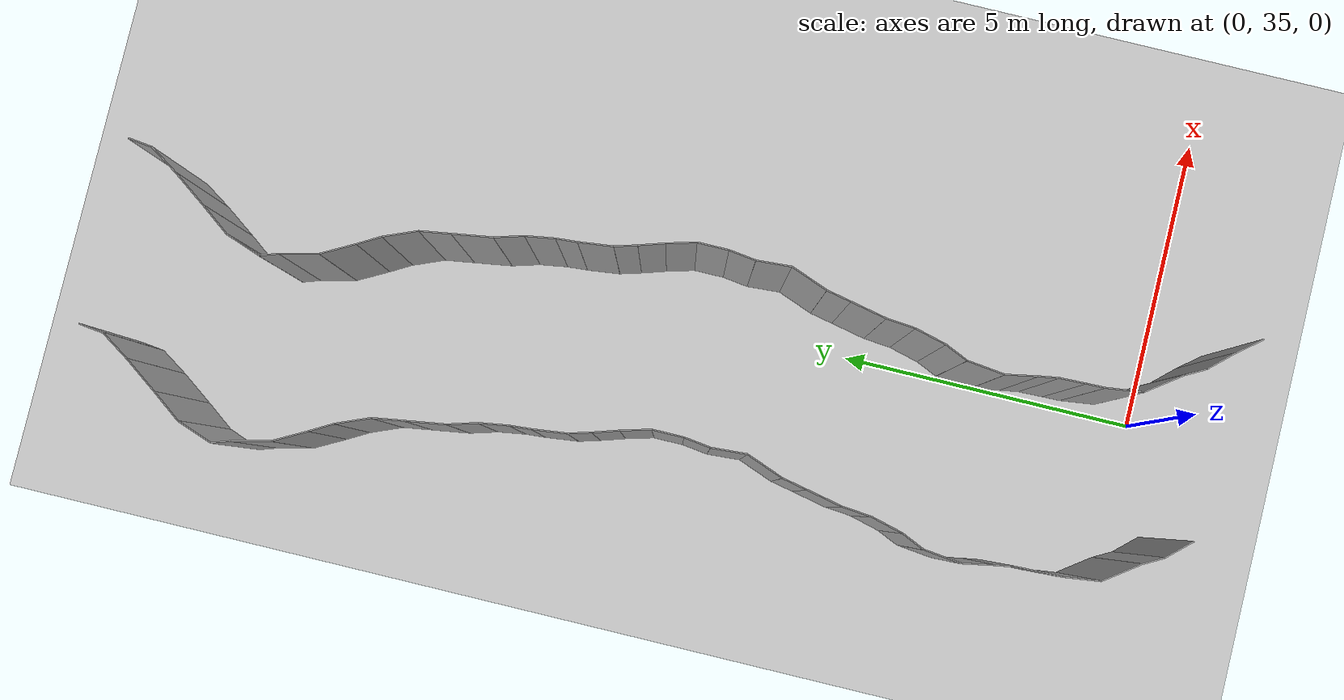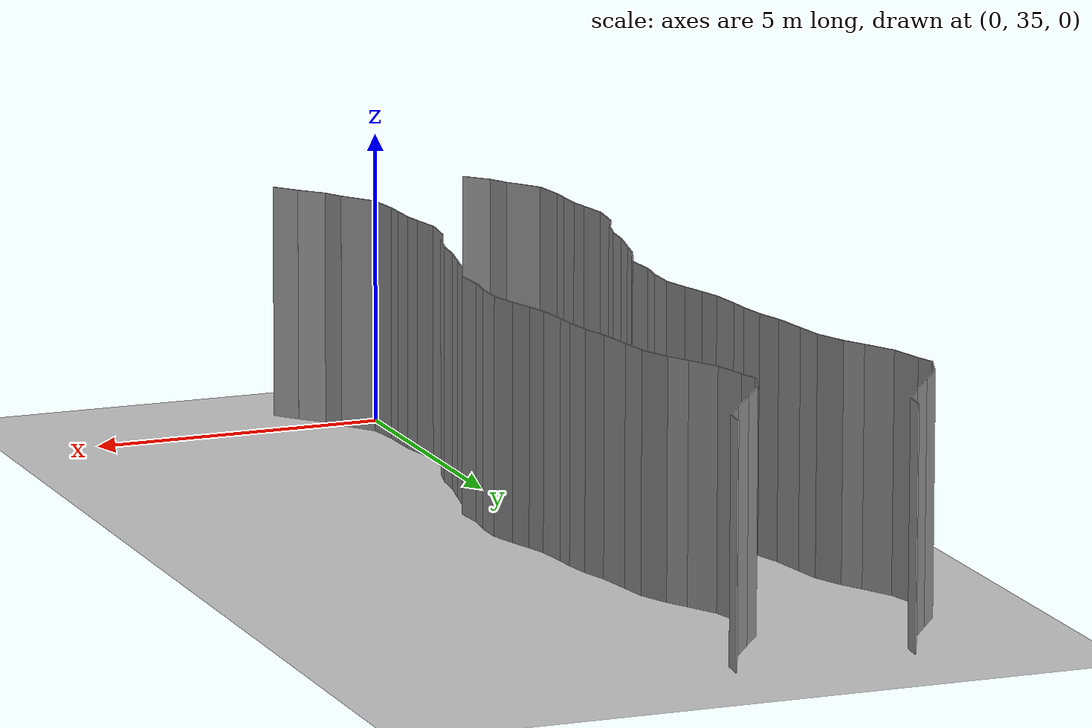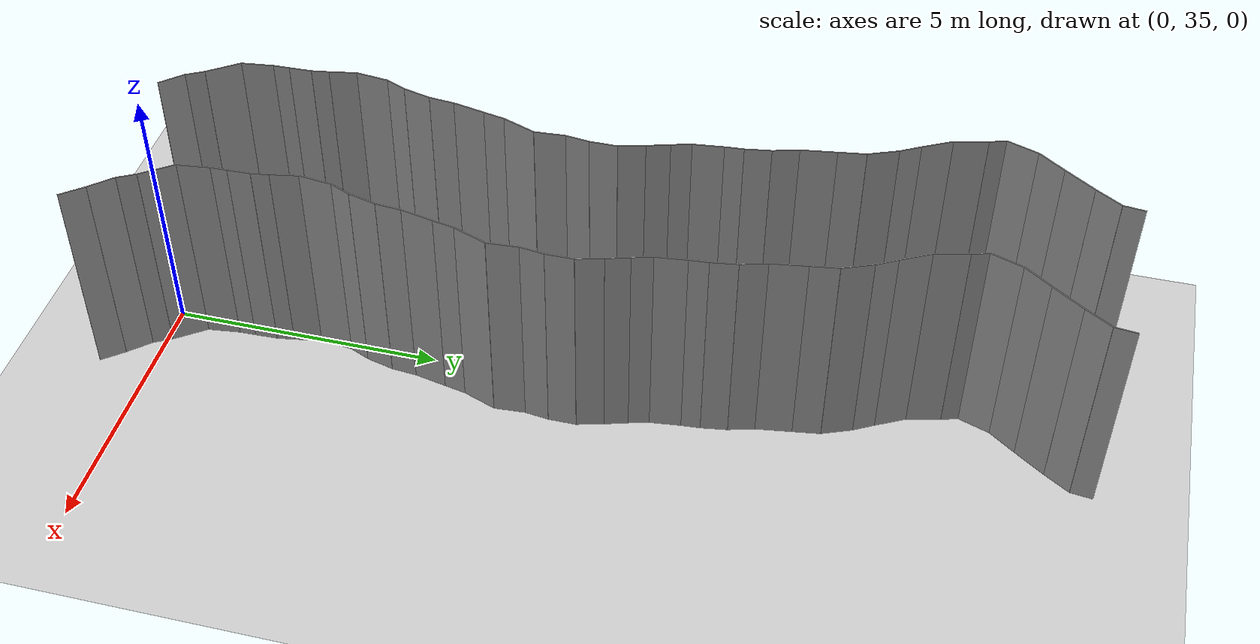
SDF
<sdf version="1.6">
 <world name="default">
  <model name="ground_plane">
   <static>1</static>
   <link name="link">
    <collision name="collision">
     <geometry><plane><normal>0 0 1</normal><size>200 200</size></plane></geometry>
     <surface><friction><ode><mu>100</mu><mu2>50</mu2></ode></friction></surface>
    </collision>
    <visual name="visual">
     <cast_shadows>0</cast_shadows>
     <geometry><plane><normal>0 0 1</normal><size>200 200</size></plane></geometry>
     <material>
      <script><uri>file://media/materials/scripts/gazebo.material</uri><name>Gazebo/Grey</name></script>
     </material>
    </visual>
   </link>
   <pose>0 100 0 0 -0 0</pose>
  </model>
  <model name="wall_149">
   <static>1</static>
   <pose>1.332459796747554 34.1894363242963 2 0 0 0.6821305578264967</pose>
   <link name="link">
    <collision name="collision"><geometry><box><size>0.02 0.492955525342 4</size></box></geometry></collision>
    <visual name="visual">
     <material>
      <script><name>Gazebo/Grey</name><uri>file://media/materials/scripts/gazebo.material</uri></script>
     </material>
     <geometry><box><size>0.02 0.492955525342 4</size></box></geometry>
    </visual>
   </link>
  </model>
  <model name="wall_150">
   <static>1</static>
   <pose>-1.9984593966821205 34.57117535627085 2 0 0 0.7447378373779694</pose>
   <link name="link">
    <collision name="collision"><geometry><box><size>0.02 0.517949649333 4</size></box></geometry></collision>
    <visual name="visual">
     <material>
      <script><name>Gazebo/Grey</name><uri>file://media/materials/scripts/gazebo.material</uri></script>
     </material>
     <geometry><box><size>0.02 0.517949649333 4</size></box></geometry>
    </visual>
   </link>
  </model>
  <model name="wall_151">
   <static>1</static>
   <pose>1.0015406033178795 34.57117535627085 2 0 0 0.7447378373779694</pose>
   <link name="link">
    <collision name="collision"><geometry><box><size>0.02 0.517949649333 4</size></box></geometry></collision>
    <visual name="visual">
     <material>
      <script><name>Gazebo/Grey</name><uri>file://media/materials/scripts/gazebo.material</uri></script>
     </material>
     <geometry><box><size>0.02 0.517949649333 4</size></box></geometry>
    </visual>
   </link>
  </model>
  <model name="wall_152">
   <static>1</static>
   <pose>-2.2610036979116828 34.92080439907163 2 0 0 0.5001823997998763</pose>
   <link name="link">
    <collision name="collision"><geometry><box><size>0.02 0.362882388259 4</size></box></geometry></collision>
    <visual name="visual">
     <material>
      <script><name>Gazebo/Grey</name><uri>file://media/materials/scripts/gazebo.material</uri></script>
     </material>
     <geometry><box><size>0.02 0.362882388259 4</size></box></geometry>
    </visual>
   </link>
  </model>
  <model name="wall_153">
   <static>1</static>
   <pose>0.7389963020883172 34.92080439907163 2 0 0 0.5001823997998763</pose>
   <link name="link">
    <collision name="collision"><geometry><box><size>0.02 0.362882388259 4</size></box></geometry></collision>
    <visual name="visual">
     <material>
      <script><name>Gazebo/Grey</name><uri>file://media/materials/scripts/gazebo.material</uri></script>
     </material>
     <geometry><box><size>0.02 0.362882388259 4</size></box></geometry>
    </visual>
   </link>
  </model>
  <model name="wall_154">
   <static>1</static>
   <pose>-2.5492954238315155 35.35647186929814 2 0 0 0.6293116096216603</pose>
   <link name="link">
    <collision name="collision"><geometry><box><size>0.02 0.683924958503 4</size></box></geometry></collision>
    <visual name="visual">
     <material>
      <script><name>Gazebo/Grey</name><uri>file://media/materials/scripts/gazebo.material</uri></script>
     </material>
     <geometry><box><size>0.02 0.683924958503 4</size></box></geometry>
    </visual>
   </link>
  </model>
  <model name="wall_155">
   <static>1</static>
   <pose>0.45070457616848447 35.35647186929814 2 0 0 0.6293116096216603</pose>
   <link name="link">
    <collision name="collision"><geometry><box><size>0.02 0.683924958503 4</size></box></geometry></collision>
    <visual name="visual">
     <material>
      <script><name>Gazebo/Grey</name><uri>file://media/materials/scripts/gazebo.material</uri></script>
     </material>
     <geometry><box><size>0.02 0.683924958503 4</size></box></geometry>
    </visual>
   </link>
  </model>
  <model name="wall_156">
   <static>1</static>
   <pose>-2.7881665402278624 35.93277398334961 2 0 0 0.12473235510812558</pose>
   <link name="link">
    <collision name="collision"><geometry><box><size>0.02 0.604392329141 4</size></box></geometry></collision>
    <visual name="visual">
     <material>
      <script><name>Gazebo/Grey</name><uri>file://media/materials/scripts/gazebo.material</uri></script>
     </material>
     <geometry><box><size>0.02 0.604392329141 4</size></box></geometry>
    </visual>
   </link>
  </model>
  <model name="wall_157">
   <static>1</static>
   <pose>0.21183345977213763 35.93277398334961 2 0 0 0.12473235510812558</pose>
   <link name="link">
    <collision name="collision"><geometry><box><size>0.02 0.604392329141 4</size></box></geometry></collision>
    <visual name="visual">
     <material>
      <script><name>Gazebo/Grey</name><uri>file://media/materials/scripts/gazebo.material</uri></script>
     </material>
     <geometry><box><size>0.02 0.604392329141 4</size></box></geometry>
    </visual>
   </link>
  </model>
  <model name="wall_158">
   <static>1</static>
   <pose>-2.8289263757045955 36.38547688207906 2 0 0 0.020695557817631428</pose>
   <link name="link">
    <collision name="collision"><geometry><box><size>0.02 0.305774472375 4</size></box></geometry></collision>
    <visual name="visual">
     <material>
      <script><name>Gazebo/Grey</name><uri>file://media/materials/scripts/gazebo.material</uri></script>
     </material>
     <geometry><box><size>0.02 0.305774472375 4</size></box></geometry>
    </visual>
   </link>
  </model>
  <model name="wall_159">
   <static>1</static>
   <pose>0.1710736242954045 36.38547688207906 2 0 0 0.020695557817631428</pose>
   <link name="link">
    <collision name="collision"><geometry><box><size>0.02 0.305774472375 4</size></box></geometry></collision>
    <visual name="visual">
     <material>
      <script><name>Gazebo/Grey</name><uri>file://media/materials/scripts/gazebo.material</uri></script>
     </material>
     <geometry><box><size>0.02 0.305774472375 4</size></box></geometry>
    </visual>
   </link>
  </model>
  <model name="wall_160">
   <static>1</static>
   <pose>-2.83850444413655 36.75089710789396 2 0 0 0.030166019370018365</pose>
   <link name="link">
    <collision name="collision"><geometry><box><size>0.02 0.425324965243 4</size></box></geometry></collision>
    <visual name="visual">
     <material>
      <script><name>Gazebo/Grey</name><uri>file://media/materials/scripts/gazebo.material</uri></script>
     </material>
     <geometry><box><size>0.02 0.425324965243 4</size></box></geometry>
    </visual>
   </link>
  </model>
  <model name="wall_161">
   <static>1</static>
   <pose>0.16149555586344988 36.75089710789396 2 0 0 0.030166019370018365</pose>
   <link name="link">
    <collision name="collision"><geometry><box><size>0.02 0.425324965243 4</size></box></geometry></collision>
    <visual name="visual">
     <material>
      <script><name>Gazebo/Grey</name><uri>file://media/materials/scripts/gazebo.material</uri></script>
     </material>
     <geometry><box><size>0.02 0.425324965243 4</size></box></geometry>
    </visual>
   </link>
  </model>
  <model name="wall_162">
   <static>1</static>
   <pose>-2.870725222512821 37.12368220014198 2 0 0 0.15969861057985157</pose>
   <link name="link">
    <collision name="collision"><geometry><box><size>0.02 0.324568779883 4</size></box></geometry></collision>
    <visual name="visual">
     <material>
      <script><name>Gazebo/Grey</name><uri>file://media/materials/scripts/gazebo.material</uri></script>
     </material>
     <geometry><box><size>0.02 0.324568779883 4</size></box></geometry>
    </visual>
   </link>
  </model>
  <model name="wall_163">
   <static>1</static>
   <pose>0.1292747774871792 37.12368220014198 2 0 0 0.15969861057985157</pose>
   <link name="link">
    <collision name="collision"><geometry><box><size>0.02 0.324568779883 4</size></box></geometry></collision>
    <visual name="visual">
     <material>
      <script><name>Gazebo/Grey</name><uri>file://media/materials/scripts/gazebo.material</uri></script>
     </material>
     <geometry><box><size>0.02 0.324568779883 4</size></box></geometry>
    </visual>
   </link>
  </model>
  <model name="wall_164">
   <static>1</static>
   <pose>-2.9441962992742643 37.53825327620614 2 0 0 0.18524752701487604</pose>
   <link name="link">
    <collision name="collision"><geometry><box><size>0.02 0.517558496478 4</size></box></geometry></collision>
    <visual name="visual">
     <material>
      <script><name>Gazebo/Grey</name><uri>file://media/materials/scripts/gazebo.material</uri></script>
     </material>
     <geometry><box><size>0.02 0.517558496478 4</size></box></geometry>
    </visual>
   </link>
  </model>
  <model name="wall_165">
   <static>1</static>
   <pose>0.055803700725735705 37.53825327620614 2 0 0 0.18524752701487604</pose>
   <link name="link">
    <collision name="collision"><geometry><box><size>0.02 0.517558496478 4</size></box></geometry></collision>
    <visual name="visual">
     <material>
      <script><name>Gazebo/Grey</name><uri>file://media/materials/scripts/gazebo.material</uri></script>
     </material>
     <geometry><box><size>0.02 0.517558496478 4</size></box></geometry>
    </visual>
   </link>
  </model>
  <model name="wall_166">
   <static>1</static>
   <pose>-2.9558007237277195 38.099800358733496 2 0 0 -0.116850105211004</pose>
   <link name="link">
    <collision name="collision"><geometry><box><size>0.02 0.618609163233 4</size></box></geometry></collision>
    <visual name="visual">
     <material>
      <script><name>Gazebo/Grey</name><uri>file://media/materials/scripts/gazebo.material</uri></script>
     </material>
     <geometry><box><size>0.02 0.618609163233 4</size></box></geometry>
    </visual>
   </link>
  </model>
  <model name="wall_167">
   <static>1</static>
   <pose>0.044199276272280486 38.099800358733496 2 0 0 -0.116850105211004</pose>
   <link name="link">
    <collision name="collision"><geometry><box><size>0.02 0.618609163233 4</size></box></geometry></collision>
    <visual name="visual">
     <material>
      <script><name>Gazebo/Grey</name><uri>file://media/materials/scripts/gazebo.material</uri></script>
     </material>
     <geometry><box><size>0.02 0.618609163233 4</size></box></geometry>
    </visual>
   </link>
  </model>
  <model name="wall_168">
   <static>1</static>
   <pose>-2.8356437064748956 38.595325631354335 2 0 0 -0.4199733097039296</pose>
   <link name="link">
    <collision name="collision"><geometry><box><size>0.02 0.412506713604 4</size></box></geometry></collision>
    <visual name="visual">
     <material>
      <script><name>Gazebo/Grey</name><uri>file://media/materials/scripts/gazebo.material</uri></script>
     </material>
     <geometry><box><size>0.02 0.412506713604 4</size></box></geometry>
    </visual>
   </link>
  </model>
  <model name="wall_169">
   <static>1</static>
   <pose>0.1643562935251044 38.595325631354335 2 0 0 -0.4199733097039296</pose>
   <link name="link">
    <collision name="collision"><geometry><box><size>0.02 0.412506713604 4</size></box></geometry></collision>
    <visual name="visual">
     <material>
      <script><name>Gazebo/Grey</name><uri>file://media/materials/scripts/gazebo.material</uri></script>
     </material>
     <geometry><box><size>0.02 0.412506713604 4</size></box></geometry>
    </visual>
   </link>
  </model>
  <model name="wall_170">
   <static>1</static>
   <pose>-2.6848852523071263 39.04228632926861 2 0 0 -0.2522573133152819</pose>
   <link name="link">
    <collision name="collision"><geometry><box><size>0.02 0.534167186553 4</size></box></geometry></collision>
    <visual name="visual">
     <material>
      <script><name>Gazebo/Grey</name><uri>file://media/materials/scripts/gazebo.material</uri></script>
     </material>
     <geometry><box><size>0.02 0.534167186553 4</size></box></geometry>
    </visual>
   </link>
  </model>
  <model name="wall_171">
   <static>1</static>
   <pose>0.31511474769287373 39.04228632926861 2 0 0 -0.2522573133152819</pose>
   <link name="link">
    <collision name="collision"><geometry><box><size>0.02 0.534167186553 4</size></box></geometry></collision>
    <visual name="visual">
     <material>
      <script><name>Gazebo/Grey</name><uri>file://media/materials/scripts/gazebo.material</uri></script>
     </material>
     <geometry><box><size>0.02 0.534167186553 4</size></box></geometry>
    </visual>
   </link>
  </model>
  <model name="wall_172">
   <static>1</static>
   <pose>-2.595888286052671 39.538241322947485 2 0 0 -0.09383725530664613</pose>
   <link name="link">
    <collision name="collision"><geometry><box><size>0.02 0.476745835212 4</size></box></geometry></collision>
    <visual name="visual">
     <material>
      <script><name>Gazebo/Grey</name><uri>file://media/materials/scripts/gazebo.material</uri></script>
     </material>
     <geometry><box><size>0.02 0.476745835212 4</size></box></geometry>
    </visual>
   </link>
  </model>
  <model name="wall_173">
   <static>1</static>
   <pose>0.40411171394732914 39.538241322947485 2 0 0 -0.09383725530664613</pose>
   <link name="link">
    <collision name="collision"><geometry><box><size>0.02 0.476745835212 4</size></box></geometry></collision>
    <visual name="visual">
     <material>
      <script><name>Gazebo/Grey</name><uri>file://media/materials/scripts/gazebo.material</uri></script>
     </material>
     <geometry><box><size>0.02 0.476745835212 4</size></box></geometry>
    </visual>
   </link>
  </model>
  <model name="wall_174">
   <static>1</static>
   <pose>-2.510156355215585 40.07430881919638 2 0 0 -0.2091084444487573</pose>
   <link name="link">
    <collision name="collision"><geometry><box><size>0.02 0.610791851545 4</size></box></geometry></collision>
    <visual name="visual">
     <material>
      <script><name>Gazebo/Grey</name><uri>file://media/materials/scripts/gazebo.material</uri></script>
     </material>
     <geometry><box><size>0.02 0.610791851545 4</size></box></geometry>
    </visual>
   </link>
  </model>
  <model name="wall_175">
   <static>1</static>
   <pose>0.4898436447844152 40.07430881919638 2 0 0 -0.2091084444487573</pose>
   <link name="link">
    <collision name="collision"><geometry><box><size>0.02 0.610791851545 4</size></box></geometry></collision>
    <visual name="visual">
     <material>
      <script><name>Gazebo/Grey</name><uri>file://media/materials/scripts/gazebo.material</uri></script>
     </material>
     <geometry><box><size>0.02 0.610791851545 4</size></box></geometry>
    </visual>
   </link>
  </model>
  <model name="wall_176">
   <static>1</static>
   <pose>-2.405273103232558 40.57323324489003 2 0 0 -0.20435320700039863</pose>
   <link name="link">
    <collision name="collision"><geometry><box><size>0.02 0.408869839142 4</size></box></geometry></collision>
    <visual name="visual">
     <material>
      <script><name>Gazebo/Grey</name><uri>file://media/materials/scripts/gazebo.material</uri></script>
     </material>
     <geometry><box><size>0.02 0.408869839142 4</size></box></geometry>
    </visual>
   </link>
  </model>
  <model name="wall_177">
   <static>1</static>
   <pose>0.5947268967674422 40.57323324489003 2 0 0 -0.20435320700039863</pose>
   <link name="link">
    <collision name="collision"><geometry><box><size>0.02 0.408869839142 4</size></box></geometry></collision>
    <visual name="visual">
     <material>
      <script><name>Gazebo/Grey</name><uri>file://media/materials/scripts/gazebo.material</uri></script>
     </material>
     <geometry><box><size>0.02 0.408869839142 4</size></box></geometry>
    </visual>
   </link>
  </model>
  <model name="wall_178">
   <static>1</static>
   <pose>-2.2472295315914663 41.07958861056498 2 0 0 -0.3637479037039396</pose>
   <link name="link">
    <collision name="collision"><geometry><box><size>0.02 0.655219509976 4</size></box></geometry></collision>
    <visual name="visual">
     <material>
      <script><name>Gazebo/Grey</name><uri>file://media/materials/scripts/gazebo.material</uri></script>
     </material>
     <geometry><box><size>0.02 0.655219509976 4</size></box></geometry>
    </visual>
   </link>
  </model>
  <model name="wall_179">
   <static>1</static>
   <pose>0.7527704684085337 41.07958861056498 2 0 0 -0.3637479037039396</pose>
   <link name="link">
    <collision name="collision"><geometry><box><size>0.02 0.655219509976 4</size></box></geometry></collision>
    <visual name="visual">
     <material>
      <script><name>Gazebo/Grey</name><uri>file://media/materials/scripts/gazebo.material</uri></script>
     </material>
     <geometry><box><size>0.02 0.655219509976 4</size></box></geometry>
    </visual>
   </link>
  </model>
  <model name="wall_180">
   <static>1</static>
   <pose>-2.149109166332246 41.672337617994394 2 0 0 0.06424524147767186</pose>
   <link name="link">
    <collision name="collision"><geometry><box><size>0.02 0.574334402147 4</size></box></geometry></collision>
    <visual name="visual">
     <material>
      <script><name>Gazebo/Grey</name><uri>file://media/materials/scripts/gazebo.material</uri></script>
     </material>
     <geometry><box><size>0.02 0.574334402147 4</size></box></geometry>
    </visual>
   </link>
  </model>
  <model name="wall_181">
   <static>1</static>
   <pose>0.8508908336677541 41.672337617994394 2 0 0 0.06424524147767186</pose>
   <link name="link">
    <collision name="collision"><geometry><box><size>0.02 0.574334402147 4</size></box></geometry></collision>
    <visual name="visual">
     <material>
      <script><name>Gazebo/Grey</name><uri>file://media/materials/scripts/gazebo.material</uri></script>
     </material>
     <geometry><box><size>0.02 0.574334402147 4</size></box></geometry>
    </visual>
   </link>
  </model>
  <model name="wall_182">
   <static>1</static>
   <pose>-2.1381304943262562 42.18029528802715 2 0 0 -0.13209610314592699</pose>
   <link name="link">
    <collision name="collision"><geometry><box><size>0.02 0.446657080217 4</size></box></geometry></collision>
    <visual name="visual">
     <material>
      <script><name>Gazebo/Grey</name><uri>file://media/materials/scripts/gazebo.material</uri></script>
     </material>
     <geometry><box><size>0.02 0.446657080217 4</size></box></geometry>
    </visual>
   </link>
  </model>
  <model name="wall_183">
   <static>1</static>
   <pose>0.8618695056737438 42.18029528802715 2 0 0 -0.13209610314592699</pose>
   <link name="link">
    <collision name="collision"><geometry><box><size>0.02 0.446657080217 4</size></box></geometry></collision>
    <visual name="visual">
     <material>
      <script><name>Gazebo/Grey</name><uri>file://media/materials/scripts/gazebo.material</uri></script>
     </material>
     <geometry><box><size>0.02 0.446657080217 4</size></box></geometry>
    </visual>
   </link>
  </model>
  <model name="wall_184">
   <static>1</static>
   <pose>-2.108733756666895 42.65779423647947 2 0 0 7.173245139002038e-05</pose>
   <link name="link">
    <collision name="collision"><geometry><box><size>0.02 0.51223209936 4</size></box></geometry></collision>
    <visual name="visual">
     <material>
      <script><name>Gazebo/Grey</name><uri>file://media/materials/scripts/gazebo.material</uri></script>
     </material>
     <geometry><box><size>0.02 0.51223209936 4</size></box></geometry>
    </visual>
   </link>
  </model>
  <model name="wall_185">
   <static>1</static>
   <pose>0.8912662433331051 42.65779423647947 2 0 0 7.173245139002038e-05</pose>
   <link name="link">
    <collision name="collision"><geometry><box><size>0.02 0.51223209936 4</size></box></geometry></collision>
    <visual name="visual">
     <material>
      <script><name>Gazebo/Grey</name><uri>file://media/materials/scripts/gazebo.material</uri></script>
     </material>
     <geometry><box><size>0.02 0.51223209936 4</size></box></geometry>
    </visual>
   </link>
  </model>
  <model name="wall_186">
   <static>1</static>
   <pose>-2.17444894225317 43.15154704091183 2 0 0 0.26972210148779796</pose>
   <link name="link">
    <collision name="collision"><geometry><box><size>0.02 0.493101607622 4</size></box></geometry></collision>
    <visual name="visual">
     <material>
      <script><name>Gazebo/Grey</name><uri>file://media/materials/scripts/gazebo.material</uri></script>
     </material>
     <geometry><box><size>0.02 0.493101607622 4</size></box></geometry>
    </visual>
   </link>
  </model>
  <model name="wall_187">
   <static>1</static>
   <pose>0.8255510577468299 43.15154704091183 2 0 0 0.26972210148779796</pose>
   <link name="link">
    <collision name="collision"><geometry><box><size>0.02 0.493101607622 4</size></box></geometry></collision>
    <visual name="visual">
     <material>
      <script><name>Gazebo/Grey</name><uri>file://media/materials/scripts/gazebo.material</uri></script>
     </material>
     <geometry><box><size>0.02 0.493101607622 4</size></box></geometry>
    </visual>
   </link>
  </model>
  <model name="wall_188">
   <static>1</static>
   <pose>-2.305650753116275 43.596332236801864 2 0 0 0.3062725791957608</pose>
   <link name="link">
    <collision name="collision"><geometry><box><size>0.02 0.434517576349 4</size></box></geometry></collision>
    <visual name="visual">
     <material>
      <script><name>Gazebo/Grey</name><uri>file://media/materials/scripts/gazebo.material</uri></script>
     </material>
     <geometry><box><size>0.02 0.434517576349 4</size></box></geometry>
    </visual>
   </link>
  </model>
  <model name="wall_189">
   <static>1</static>
   <pose>0.6943492468837249 43.596332236801864 2 0 0 0.3062725791957608</pose>
   <link name="link">
    <collision name="collision"><geometry><box><size>0.02 0.434517576349 4</size></box></geometry></collision>
    <visual name="visual">
     <material>
      <script><name>Gazebo/Grey</name><uri>file://media/materials/scripts/gazebo.material</uri></script>
     </material>
     <geometry><box><size>0.02 0.434517576349 4</size></box></geometry>
    </visual>
   </link>
  </model>
  <model name="wall_190">
   <static>1</static>
   <pose>-2.423134288945694 43.98460219109296 2 0 0 0.27947091844205196</pose>
   <link name="link">
    <collision name="collision"><geometry><box><size>0.02 0.376864809996 4</size></box></geometry></collision>
    <visual name="visual">
     <material>
      <script><name>Gazebo/Grey</name><uri>file://media/materials/scripts/gazebo.material</uri></script>
     </material>
     <geometry><box><size>0.02 0.376864809996 4</size></box></geometry>
    </visual>
   </link>
  </model>
  <model name="wall_191">
   <static>1</static>
   <pose>0.5768657110543058 43.98460219109296 2 0 0 0.27947091844205196</pose>
   <link name="link">
    <collision name="collision"><geometry><box><size>0.02 0.376864809996 4</size></box></geometry></collision>
    <visual name="visual">
     <material>
      <script><name>Gazebo/Grey</name><uri>file://media/materials/scripts/gazebo.material</uri></script>
     </material>
     <geometry><box><size>0.02 0.376864809996 4</size></box></geometry>
    </visual>
   </link>
  </model>
  <model name="wall_192">
   <static>1</static>
   <pose>-2.508654123100942 44.44723579082739 2 0 0 0.11858786239266941</pose>
   <link name="link">
    <collision name="collision"><geometry><box><size>0.02 0.567006430368 4</size></box></geometry></collision>
    <visual name="visual">
     <material>
      <script><name>Gazebo/Grey</name><uri>file://media/materials/scripts/gazebo.material</uri></script>
     </material>
     <geometry><box><size>0.02 0.567006430368 4</size></box></geometry>
    </visual>
   </link>
  </model>
  <model name="wall_193">
   <static>1</static>
   <pose>0.4913458768990582 44.44723579082739 2 0 0 0.11858786239266941</pose>
   <link name="link">
    <collision name="collision"><geometry><box><size>0.02 0.567006430368 4</size></box></geometry></collision>
    <visual name="visual">
     <material>
      <script><name>Gazebo/Grey</name><uri>file://media/materials/scripts/gazebo.material</uri></script>
     </material>
     <geometry><box><size>0.02 0.567006430368 4</size></box></geometry>
    </visual>
   </link>
  </model>
  <model name="wall_194">
   <static>1</static>
   <pose>-2.555210262536265 44.90154110968918 2 0 0 0.07517838219015192</pose>
   <link name="link">
    <collision name="collision"><geometry><box><size>0.02 0.346565361882 4</size></box></geometry></collision>
    <visual name="visual">
     <material>
      <script><name>Gazebo/Grey</name><uri>file://media/materials/scripts/gazebo.material</uri></script>
     </material>
     <geometry><box><size>0.02 0.346565361882 4</size></box></geometry>
    </visual>
   </link>
  </model>
  <model name="wall_195">
   <static>1</static>
   <pose>0.44478973746373507 44.90154110968918 2 0 0 0.07517838219015192</pose>
   <link name="link">
    <collision name="collision"><geometry><box><size>0.02 0.346565361882 4</size></box></geometry></collision>
    <visual name="visual">
     <material>
      <script><name>Gazebo/Grey</name><uri>file://media/materials/scripts/gazebo.material</uri></script>
     </material>
     <geometry><box><size>0.02 0.346565361882 4</size></box></geometry>
    </visual>
   </link>
  </model>
  <model name="wall_196">
   <static>1</static>
   <pose>-2.6057657131513072 45.31365373466591 2 0 0 0.15559609149288803</pose>
   <link name="link">
    <collision name="collision"><geometry><box><size>0.02 0.48449176897 4</size></box></geometry></collision>
    <visual name="visual">
     <material>
      <script><name>Gazebo/Grey</name><uri>file://media/materials/scripts/gazebo.material</uri></script>
     </material>
     <geometry><box><size>0.02 0.48449176897 4</size></box></geometry>
    </visual>
   </link>
  </model>
  <model name="wall_197">
   <static>1</static>
   <pose>0.39423428684869277 45.31365373466591 2 0 0 0.15559609149288803</pose>
   <link name="link">
    <collision name="collision"><geometry><box><size>0.02 0.48449176897 4</size></box></geometry></collision>
    <visual name="visual">
     <material>
      <script><name>Gazebo/Grey</name><uri>file://media/materials/scripts/gazebo.material</uri></script>
     </material>
     <geometry><box><size>0.02 0.48449176897 4</size></box></geometry>
    </visual>
   </link>
  </model>
  <model name="wall_198">
   <static>1</static>
   <pose>-2.711461391723145 45.78676211950064 2 0 0 0.28366250280304534</pose>
   <link name="link">
    <collision name="collision"><geometry><box><size>0.02 0.487041710686 4</size></box></geometry></collision>
    <visual name="visual">
     <material>
      <script><name>Gazebo/Grey</name><uri>file://media/materials/scripts/gazebo.material</uri></script>
     </material>
     <geometry><box><size>0.02 0.487041710686 4</size></box></geometry>
    </visual>
   </link>
  </model>
  <model name="wall_199">
   <static>1</static>
   <pose>0.28853860827685507 45.78676211950064 2 0 0 0.28366250280304534</pose>
   <link name="link">
    <collision name="collision"><geometry><box><size>0.02 0.487041710686 4</size></box></geometry></collision>
    <visual name="visual">
     <material>
      <script><name>Gazebo/Grey</name><uri>file://media/materials/scripts/gazebo.material</uri></script>
     </material>
     <geometry><box><size>0.02 0.487041710686 4</size></box></geometry>
    </visual>
   </link>
  </model>
  <model name="wall_200">
   <static>1</static>
   <pose>-2.8292866152469642 46.345938127345406 2 0 0 0.15148009230059922</pose>
   <link name="link">
    <collision name="collision"><geometry><box><size>0.02 0.658312489682 4</size></box></geometry></collision>
    <visual name="visual">
     <material>
      <script><name>Gazebo/Grey</name><uri>file://media/materials/scripts/gazebo.material</uri></script>
     </material>
     <geometry><box><size>0.02 0.658312489682 4</size></box></geometry>
    </visual>
   </link>
  </model>
  <model name="wall_201">
   <static>1</static>
   <pose>0.17071338475303577 46.345938127345406 2 0 0 0.15148009230059922</pose>
   <link name="link">
    <collision name="collision"><geometry><box><size>0.02 0.658312489682 4</size></box></geometry></collision>
    <visual name="visual">
     <material>
      <script><name>Gazebo/Grey</name><uri>file://media/materials/scripts/gazebo.material</uri></script>
     </material>
     <geometry><box><size>0.02 0.658312489682 4</size></box></geometry>
    </visual>
   </link>
  </model>
  <model name="wall_202">
   <static>1</static>
   <pose>-2.917293665318186 46.92277763703161 2 0 0 0.15129669653113778</pose>
   <link name="link">
    <collision name="collision"><geometry><box><size>0.02 0.508716325066 4</size></box></geometry></collision>
    <visual name="visual">
     <material>
      <script><name>Gazebo/Grey</name><uri>file://media/materials/scripts/gazebo.material</uri></script>
     </material>
     <geometry><box><size>0.02 0.508716325066 4</size></box></geometry>
    </visual>
   </link>
  </model>
  <model name="wall_203">
   <static>1</static>
   <pose>0.08270633468181421 46.92277763703161 2 0 0 0.15129669653113778</pose>
   <link name="link">
    <collision name="collision"><geometry><box><size>0.02 0.508716325066 4</size></box></geometry></collision>
    <visual name="visual">
     <material>
      <script><name>Gazebo/Grey</name><uri>file://media/materials/scripts/gazebo.material</uri></script>
     </material>
     <geometry><box><size>0.02 0.508716325066 4</size></box></geometry>
    </visual>
   </link>
  </model>
  <model name="wall_204">
   <static>1</static>
   <pose>-3.0664072098422133 47.44159949265228 2 0 0 0.3927904787354125</pose>
   <link name="link">
    <collision name="collision"><geometry><box><size>0.02 0.578818937129 4</size></box></geometry></collision>
    <visual name="visual">
     <material>
      <script><name>Gazebo/Grey</name><uri>file://media/materials/scripts/gazebo.material</uri></script>
     </material>
     <geometry><box><size>0.02 0.578818937129 4</size></box></geometry>
    </visual>
   </link>
  </model>
  <model name="wall_205">
   <static>1</static>
   <pose>-0.06640720984221327 47.44159949265228 2 0 0 0.3927904787354125</pose>
   <link name="link">
    <collision name="collision"><geometry><box><size>0.02 0.578818937129 4</size></box></geometry></collision>
    <visual name="visual">
     <material>
      <script><name>Gazebo/Grey</name><uri>file://media/materials/scripts/gazebo.material</uri></script>
     </material>
     <geometry><box><size>0.02 0.578818937129 4</size></box></geometry>
    </visual>
   </link>
  </model>
  <model name="wall_206">
   <static>1</static>
   <pose>-3.2800577489822818 47.88843520550296 2 0 0 0.5204963342736442</pose>
   <link name="link">
    <collision name="collision"><geometry><box><size>0.02 0.413720723866 4</size></box></geometry></collision>
    <visual name="visual">
     <material>
      <script><name>Gazebo/Grey</name><uri>file://media/materials/scripts/gazebo.material</uri></script>
     </material>
     <geometry><box><size>0.02 0.413720723866 4</size></box></geometry>
    </visual>
   </link>
  </model>
  <model name="wall_207">
   <static>1</static>
   <pose>-0.28005774898228175 47.88843520550296 2 0 0 0.5204963342736442</pose>
   <link name="link">
    <collision name="collision"><geometry><box><size>0.02 0.413720723866 4</size></box></geometry></collision>
    <visual name="visual">
     <material>
      <script><name>Gazebo/Grey</name><uri>file://media/materials/scripts/gazebo.material</uri></script>
     </material>
     <geometry><box><size>0.02 0.413720723866 4</size></box></geometry>
    </visual>
   </link>
  </model>
  <model name="wall_208">
   <static>1</static>
   <pose>-3.5249600659763765 48.329537278396025 2 0 0 0.49733564268182434</pose>
   <link name="link">
    <collision name="collision"><geometry><box><size>0.02 0.595400113213 4</size></box></geometry></collision>
    <visual name="visual">
     <material>
      <script><name>Gazebo/Grey</name><uri>file://media/materials/scripts/gazebo.material</uri></script>
     </material>
     <geometry><box><size>0.02 0.595400113213 4</size></box></geometry>
    </visual>
   </link>
  </model>
  <model name="wall_209">
   <static>1</static>
   <pose>-0.5249600659763765 48.329537278396025 2 0 0 0.49733564268182434</pose>
   <link name="link">
    <collision name="collision"><geometry><box><size>0.02 0.595400113213 4</size></box></geometry></collision>
    <visual name="visual">
     <material>
      <script><name>Gazebo/Grey</name><uri>file://media/materials/scripts/gazebo.material</uri></script>
     </material>
     <geometry><box><size>0.02 0.595400113213 4</size></box></geometry>
    </visual>
   </link>
  </model>
  <model name="wall_210">
   <static>1</static>
   <pose>-3.7399541942909487 48.894564564301525 2 0 0 0.23601779867678999</pose>
   <link name="link">
    <collision name="collision"><geometry><box><size>0.02 0.624084723947 4</size></box></geometry></collision>
    <visual name="visual">
     <material>
      <script><name>Gazebo/Grey</name><uri>file://media/materials/scripts/gazebo.material</uri></script>
     </material>
     <geometry><box><size>0.02 0.624084723947 4</size></box></geometry>
    </visual>
   </link>
  </model>
  <model name="wall_211">
   <static>1</static>
   <pose>-0.7399541942909487 48.894564564301525 2 0 0 0.23601779867678999</pose>
   <link name="link">
    <collision name="collision"><geometry><box><size>0.02 0.624084723947 4</size></box></geometry></collision>
    <visual name="visual">
     <material>
      <script><name>Gazebo/Grey</name><uri>file://media/materials/scripts/gazebo.material</uri></script>
     </material>
     <geometry><box><size>0.02 0.624084723947 4</size></box></geometry>
    </visual>
   </link>
  </model>
  <model name="wall_212">
   <static>1</static>
   <pose>-3.863804675532153 49.34850985547295 2 0 0 0.32593045446863084</pose>
   <link name="link">
    <collision name="collision"><geometry><box><size>0.02 0.317840746348 4</size></box></geometry></collision>
    <visual name="visual">
     <material>
      <script><name>Gazebo/Grey</name><uri>file://media/materials/scripts/gazebo.material</uri></script>
     </material>
     <geometry><box><size>0.02 0.317840746348 4</size></box></geometry>
    </visual>
   </link>
  </model>
  <model name="wall_213">
   <static>1</static>
   <pose>-0.8638046755321529 49.34850985547295 2 0 0 0.32593045446863084</pose>
   <link name="link">
    <collision name="collision"><geometry><box><size>0.02 0.317840746348 4</size></box></geometry></collision>
    <visual name="visual">
     <material>
      <script><name>Gazebo/Grey</name><uri>file://media/materials/scripts/gazebo.material</uri></script>
     </material>
     <geometry><box><size>0.02 0.317840746348 4</size></box></geometry>
    </visual>
   </link>
  </model>
  <model name="wall_214">
   <static>1</static>
   <pose>-3.8110134336971373 49.786466911900895 2 0 0 -0.3462048027047878</pose>
   <link name="link">
    <collision name="collision"><geometry><box><size>0.02 0.6110626515 4</size></box></geometry></collision>
    <visual name="visual">
     <material>
      <script><name>Gazebo/Grey</name><uri>file://media/materials/scripts/gazebo.material</uri></script>
     </material>
     <geometry><box><size>0.02 0.6110626515 4</size></box></geometry>
    </visual>
   </link>
  </model>
  <model name="wall_215">
   <static>1</static>
   <pose>-0.8110134336971373 49.786466911900895 2 0 0 -0.3462048027047878</pose>
   <link name="link">
    <collision name="collision"><geometry><box><size>0.02 0.6110626515 4</size></box></geometry></collision>
    <visual name="visual">
     <material>
      <script><name>Gazebo/Grey</name><uri>file://media/materials/scripts/gazebo.material</uri></script>
     </material>
     <geometry><box><size>0.02 0.6110626515 4</size></box></geometry>
    </visual>
   </link>
  </model>
  <model name="wall_216">
   <static>1</static>
   <pose>-3.529890797506035 50.310368627374686 2 0 0 -0.6436981646234103</pose>
   <link name="link">
    <collision name="collision"><geometry><box><size>0.02 0.591333369085 4</size></box></geometry></collision>
    <visual name="visual">
     <material>
      <script><name>Gazebo/Grey</name><uri>file://media/materials/scripts/gazebo.material</uri></script>
     </material>
     <geometry><box><size>0.02 0.591333369085 4</size></box></geometry>
    </visual>
   </link>
  </model>
  <model name="wall_217">
   <static>1</static>
   <pose>-0.529890797506035 50.310368627374686 2 0 0 -0.6436981646234103</pose>
   <link name="link">
    <collision name="collision"><geometry><box><size>0.02 0.591333369085 4</size></box></geometry></collision>
    <visual name="visual">
     <material>
      <script><name>Gazebo/Grey</name><uri>file://media/materials/scripts/gazebo.material</uri></script>
     </material>
     <geometry><box><size>0.02 0.591333369085 4</size></box></geometry>
    </visual>
   </link>
  </model>
  <model name="wall_218">
   <static>1</static>
   <pose>-3.1551324612968674 50.818811234736664 2 0 0 -0.6276748415054998</pose>
   <link name="link">
    <collision name="collision"><geometry><box><size>0.02 0.671968970151 4</size></box></geometry></collision>
    <visual name="visual">
     <material>
      <script><name>Gazebo/Grey</name><uri>file://media/materials/scripts/gazebo.material</uri></script>
     </material>
     <geometry><box><size>0.02 0.671968970151 4</size></box></geometry>
    </visual>
   </link>
  </model>
  <model name="wall_219">
   <static>1</static>
   <pose>-0.15513246129686742 50.818811234736664 2 0 0 -0.6276748415054998</pose>
   <link name="link">
    <collision name="collision"><geometry><box><size>0.02 0.671968970151 4</size></box></geometry></collision>
    <visual name="visual">
     <material>
      <script><name>Gazebo/Grey</name><uri>file://media/materials/scripts/gazebo.material</uri></script>
     </material>
     <geometry><box><size>0.02 0.671968970151 4</size></box></geometry>
    </visual>
   </link>
  </model>
  <model name="wall_220">
   <static>1</static>
   <pose>-2.806081507856205 51.32093896837153 2 0 0 -0.5828223997796322</pose>
   <link name="link">
    <collision name="collision"><geometry><box><size>0.02 0.551395481992 4</size></box></geometry></collision>
    <visual name="visual">
     <material>
      <script><name>Gazebo/Grey</name><uri>file://media/materials/scripts/gazebo.material</uri></script>
     </material>
     <geometry><box><size>0.02 0.551395481992 4</size></box></geometry>
    </visual>
   </link>
  </model>
  <model name="wall_221">
   <static>1</static>
   <pose>0.19391849214379508 51.32093896837153 2 0 0 -0.5828223997796322</pose>
   <link name="link">
    <collision name="collision"><geometry><box><size>0.02 0.551395481992 4</size></box></geometry></collision>
    <visual name="visual">
     <material>
      <script><name>Gazebo/Grey</name><uri>file://media/materials/scripts/gazebo.material</uri></script>
     </material>
     <geometry><box><size>0.02 0.551395481992 4</size></box></geometry>
    </visual>
   </link>
  </model>
  <model name="wall_222">
   <static>1</static>
   <pose>-2.6296857341517383 51.7522002638265 2 0 0 -0.12201279461483977</pose>
   <link name="link">
    <collision name="collision"><geometry><box><size>0.02 0.405167718694 4</size></box></geometry></collision>
    <visual name="visual">
     <material>
      <script><name>Gazebo/Grey</name><uri>file://media/materials/scripts/gazebo.material</uri></script>
     </material>
     <geometry><box><size>0.02 0.405167718694 4</size></box></geometry>
    </visual>
   </link>
  </model>
  <model name="wall_223">
   <static>1</static>
   <pose>0.37031426584826166 51.7522002638265 2 0 0 -0.12201279461483977</pose>
   <link name="link">
    <collision name="collision"><geometry><box><size>0.02 0.405167718694 4</size></box></geometry></collision>
    <visual name="visual">
     <material>
      <script><name>Gazebo/Grey</name><uri>file://media/materials/scripts/gazebo.material</uri></script>
     </material>
     <geometry><box><size>0.02 0.405167718694 4</size></box></geometry>
    </visual>
   </link>
  </model>
 </world>
</sdf>
